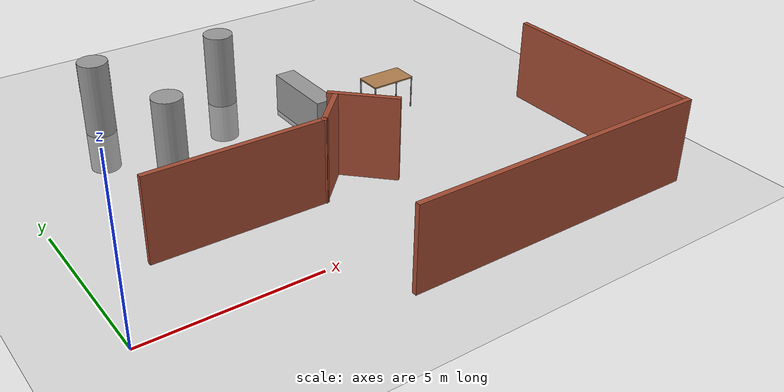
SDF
<sdf version="1.6">
 <world name="default">
  <light name="sun" type="directional">
   <pose>0 0 10 0 -0 0</pose>
   <diffuse>0.8 0.8 0.8 1</diffuse>
   <specular>0.1 0.1 0.1 1</specular>
   <attenuation>
    <range>1000</range>
    <constant>0.9</constant>
    <linear>0.01</linear>
    <quadratic>0.001</quadratic>
   </attenuation>
   <direction>-0.5 0.5 -1</direction>
  </light>
  <model name="ground_plane">
   <static>1</static>
   <link name="link">
    <collision name="collision">
     <geometry><plane><normal>0 0 1</normal><size>100 100</size></plane></geometry>
     <surface><friction><ode><mu>100</mu><mu2>50</mu2></ode></friction></surface>
    </collision>
    <visual name="visual">
     <cast_shadows>0</cast_shadows>
     <geometry><plane><normal>0 0 1</normal><size>100 100</size></plane></geometry>
     <material>
      <script><uri>file://media/materials/scripts/gazebo.material</uri><name>Gazebo/Grey</name></script>
     </material>
    </visual>
   </link>
  </model>
  <gravity>0 0 -9.8</gravity>
  <magnetic_field>6e-06 2.3e-05 -4.2e-05</magnetic_field>
  <atmosphere type="adiabatic"/>
  <physics name="default_physics" default="0" type="ode">
   <max_step_size>0.001</max_step_size>
   <real_time_factor>1</real_time_factor>
   <real_time_update_rate>1000</real_time_update_rate>
  </physics>
  <scene><ambient>0.4 0.4 0.4 1</ambient><background>0.7 0.7 0.7 1</background><shadows>1</shadows></scene>
  <spherical_coordinates>
   <surface_model>EARTH_WGS84</surface_model>
   <latitude_deg>0</latitude_deg>
   <longitude_deg>0</longitude_deg>
   <elevation>0</elevation>
   <heading_deg>0</heading_deg>
  </spherical_coordinates>
  <model name="map.world">
   <pose>8.42472 1.17172 0 0 -0 0</pose>
   <link name="Wall_0">
    <collision name="Wall_0_Collision">
     <geometry><box><size>5.10996 0.15 2.5</size></box></geometry>
     <pose>0 0 1.25 0 -0 0</pose>
    </collision>
    <visual name="Wall_0_Visual">
     <pose>0 0 1.25 0 -0 0</pose>
     <geometry><box><size>5.10996 0.15 2.5</size></box></geometry>
     <material>
      <script><uri>file://media/materials/scripts/gazebo.material</uri><name>Gazebo/Bricks</name></script>
      <ambient>1 1 1 1</ambient>
     </material>
    </visual>
    <pose>-4.23501 1.42128 0 0 0 -0.01492</pose>
   </link>
   <link name="Wall_2">
    <collision name="Wall_2_Collision">
     <geometry><box><size>1.5 0.15 2.5</size></box></geometry>
     <pose>0 0 1.25 0 -0 0</pose>
    </collision>
    <visual name="Wall_2_Visual">
     <pose>0 0 1.25 0 -0 0</pose>
     <geometry><box><size>1.5 0.15 2.5</size></box></geometry>
     <material>
      <script><uri>file://media/materials/scripts/gazebo.material</uri><name>Gazebo/Bricks</name></script>
      <ambient>1 1 1 1</ambient>
     </material>
    </visual>
    <pose>-1.27801 1.86157 0 0 0 -2.35619</pose>
   </link>
   <link name="Wall_4">
    <collision name="Wall_4_Collision">
     <geometry><box><size>2 0.15 2.5</size></box></geometry>
     <pose>0 0 1.25 0 -0 0</pose>
    </collision>
    <visual name="Wall_4_Visual">
     <pose>0 0 1.25 0 -0 0</pose>
     <geometry><box><size>2 0.15 2.5</size></box></geometry>
     <material>
      <script><uri>file://media/materials/scripts/gazebo.material</uri><name>Gazebo/Bricks</name></script>
      <ambient>1 1 1 1</ambient>
     </material>
    </visual>
    <pose>-0.160617 1.91735 0 0 0 -0.785398</pose>
   </link>
   <link name="Wall_6">
    <collision name="Wall_6_Collision">
     <geometry><box><size>9 0.15 2.5</size></box></geometry>
     <pose>0 0 1.25 0 -0 0</pose>
    </collision>
    <visual name="Wall_6_Visual">
     <pose>0 0 1.25 0 -0 0</pose>
     <geometry><box><size>9 0.15 2.5</size></box></geometry>
     <material>
      <script><uri>file://media/materials/scripts/gazebo.material</uri><name>Gazebo/Bricks</name></script>
      <ambient>1 1 1 1</ambient>
     </material>
    </visual>
    <pose>2.29082 -3.07814 0 0 -0 3.14159</pose>
   </link>
   <link name="Wall_9">
    <collision name="Wall_9_Collision">
     <geometry><box><size>6.25 0.15 2.5</size></box></geometry>
     <pose>0 0 1.25 0 -0 0</pose>
    </collision>
    <visual name="Wall_9_Visual">
     <pose>0 0 1.25 0 -0 0</pose>
     <geometry><box><size>6.25 0.15 2.5</size></box></geometry>
     <material>
      <script><uri>file://media/materials/scripts/gazebo.material</uri><name>Gazebo/Bricks</name></script>
      <ambient>1 1 1 1</ambient>
     </material>
    </visual>
    <pose>6.71582 0.028142 0 0 0 -1.5708</pose>
   </link>
   <static>1</static>
  </model>
  <model name="table">
   <static>0</static>
   <link name="link">
    <collision name="surface">
     <pose>0 0 1 0 -0 0</pose>
     <geometry><box><size>1.5 0.8 0.03</size></box></geometry>
     <surface><friction><ode><mu>0.6</mu><mu2>0.6</mu2></ode></friction></surface>
    </collision>
    <visual name="visual1">
     <pose>0 0 1 0 -0 0</pose>
     <geometry><box><size>1.4 0.8 0.04</size></box></geometry>
     <material>
      <script><uri>file://media/materials/scripts/gazebo.material</uri><name>Gazebo/Wood</name></script>
     </material>
    </visual>
    <collision name="front_left_leg">
     <pose>0.68 0.38 0.5 0 -0 0</pose>
     <geometry><cylinder><radius>0.02</radius><length>1</length></cylinder></geometry>
    </collision>
    <visual name="front_left_leg">
     <pose>0.68 0.38 0.5 0 -0 0</pose>
     <geometry><cylinder><radius>0.02</radius><length>1</length></cylinder></geometry>
     <material>
      <script><uri>file://media/materials/scripts/gazebo.material</uri><name>Gazebo/Grey</name></script>
     </material>
    </visual>
    <collision name="front_right_leg">
     <pose>0.68 -0.38 0.5 0 -0 0</pose>
     <geometry><cylinder><radius>0.02</radius><length>1</length></cylinder></geometry>
    </collision>
    <visual name="front_right_leg">
     <pose>0.68 -0.38 0.5 0 -0 0</pose>
     <geometry><cylinder><radius>0.02</radius><length>1</length></cylinder></geometry>
     <material>
      <script><uri>file://media/materials/scripts/gazebo.material</uri><name>Gazebo/Grey</name></script>
     </material>
    </visual>
    <collision name="back_right_leg">
     <pose>-0.68 -0.38 0.5 0 -0 0</pose>
     <geometry><cylinder><radius>0.02</radius><length>1</length></cylinder></geometry>
    </collision>
    <visual name="back_right_leg">
     <pose>-0.68 -0.38 0.5 0 -0 0</pose>
     <geometry><cylinder><radius>0.02</radius><length>1</length></cylinder></geometry>
     <material>
      <script><uri>file://media/materials/scripts/gazebo.material</uri><name>Gazebo/Grey</name></script>
     </material>
    </visual>
    <collision name="back_left_leg">
     <pose>-0.68 0.38 0.5 0 -0 0</pose>
     <geometry><cylinder><radius>0.02</radius><length>1</length></cylinder></geometry>
    </collision>
    <visual name="back_left_leg">
     <pose>-0.68 0.38 0.5 0 -0 0</pose>
     <geometry><cylinder><radius>0.02</radius><length>1</length></cylinder></geometry>
     <material>
      <script><uri>file://media/materials/scripts/gazebo.material</uri><name>Gazebo/Grey</name></script>
     </material>
    </visual>
    <inertial>
     <inertia><ixx>1</ixx><ixy>0</ixy><ixz>0</ixz><iyy>1</iyy><iyz>0</iyz><izz>1</izz></inertia>
     <mass>1</mass>
    </inertial>
   </link>
   <pose>11.1822 6.06203 -9e-06 0 -1e-06 0</pose>
  </model>
  <model name="unit_box_0_0">
   <link name="link">
    <inertial>
     <mass>1.98174</mass>
     <inertia>
      <ixx>1.20281</ixx>
      <ixy>0</ixy>
      <ixz>0</ixz>
      <iyy>0.370272</iyy>
      <iyz>0</iyz>
      <izz>0.961514</izz>
     </inertia>
    </inertial>
    <visual name="visual">
     <geometry><box><size>0.62489 2.3306 1.36074</size></box></geometry>
     <material>
      <script><name>Gazebo/Grey</name><uri>file://media/materials/scripts/gazebo.material</uri></script>
      <ambient>0.3 0.3 0.3 1</ambient>
      <diffuse>0.7 0.7 0.7 1</diffuse>
      <specular>0.01 0.01 0.01 1</specular>
      <emissive>0 0 0 1</emissive>
     </material>
    </visual>
    <collision name="collision">
     <geometry><box><size>0.62489 2.3306 1.36074</size></box></geometry>
     <surface>
      <friction>
       <ode><mu>1</mu><mu2>1</mu2><fdir1>0 0 0</fdir1><slip1>0</slip1><slip2>0</slip2></ode>
       <torsional>
        <coefficient>1</coefficient>
        <patch_radius>0</patch_radius>
        <surface_radius>0</surface_radius>
        <use_patch_radius>1</use_patch_radius>
        <ode><slip>0</slip></ode>
       </torsional>
      </friction>
      <bounce><restitution_coefficient>0</restitution_coefficient><threshold>1e+06</threshold></bounce>
      <contact>
       <collide_without_contact>0</collide_without_contact>
       <collide_without_contact_bitmask>1</collide_without_contact_bitmask>
       <collide_bitmask>1</collide_bitmask>
       <ode>
        <soft_cfm>0</soft_cfm>
        <soft_erp>0.2</soft_erp>
        <kp>1e+13</kp>
        <kd>1</kd>
        <max_vel>0.01</max_vel>
        <min_depth>0</min_depth>
       </ode>
       <bullet>
        <split_impulse>1</split_impulse>
        <split_impulse_penetration_threshold>-0.01</split_impulse_penetration_threshold>
        <soft_cfm>0</soft_cfm>
        <soft_erp>0.2</soft_erp>
        <kp>1e+13</kp>
        <kd>1</kd>
       </bullet>
      </contact>
     </surface>
    </collision>
   </link>
   <static>0</static>
   <pose>8.62397 6.66613 0.5 0 -0 0</pose>
  </model>
  <model name="unit_cylinder_0">
   <pose>4.09309 6.39793 0.5 0 -0 0</pose>
   <link name="link">
    <inertial>
     <mass>1</mass>
     <inertia><ixx>0.145833</ixx><ixy>0</ixy><ixz>0</ixz><iyy>0.145833</iyy><iyz>0</iyz><izz>0.125</izz></inertia>
    </inertial>
    <collision name="collision">
     <geometry><cylinder><radius>0.44841</radius><length>3.51602</length></cylinder></geometry>
    </collision>
    <visual name="visual">
     <geometry><cylinder><radius>0.44841</radius><length>3.51602</length></cylinder></geometry>
     <material>
      <script><name>Gazebo/Grey</name><uri>file://media/materials/scripts/gazebo.material</uri></script>
     </material>
    </visual>
   </link>
  </model>
  <model name="unit_cylinder_0_clone">
   <pose>3.28001 9.64406 0.5 0 -0 0</pose>
   <link name="link">
    <inertial>
     <mass>1</mass>
     <inertia><ixx>0.145833</ixx><ixy>0</ixy><ixz>0</ixz><iyy>0.145833</iyy><iyz>0</iyz><izz>0.125</izz></inertia>
    </inertial>
    <collision name="collision">
     <geometry><cylinder><radius>0.44841</radius><length>3.51602</length></cylinder></geometry>
    </collision>
    <visual name="visual">
     <geometry><cylinder><radius>0.44841</radius><length>3.51602</length></cylinder></geometry>
     <material>
      <script><name>Gazebo/Grey</name><uri>file://media/materials/scripts/gazebo.material</uri></script>
     </material>
    </visual>
   </link>
  </model>
  <model name="unit_cylinder_0_clone_clone">
   <pose>7.19696 9.36098 0.5 0 -0 0</pose>
   <link name="link">
    <inertial>
     <mass>1</mass>
     <inertia><ixx>0.145833</ixx><ixy>0</ixy><ixz>0</ixz><iyy>0.145833</iyy><iyz>0</iyz><izz>0.125</izz></inertia>
    </inertial>
    <collision name="collision">
     <geometry><cylinder><radius>0.44841</radius><length>3.51602</length></cylinder></geometry>
    </collision>
    <visual name="visual">
     <geometry><cylinder><radius>0.44841</radius><length>3.51602</length></cylinder></geometry>
     <material>
      <script><name>Gazebo/Grey</name><uri>file://media/materials/scripts/gazebo.material</uri></script>
     </material>
    </visual>
   </link>
  </model>
  <model name="unit_cylinder_1">
   <pose>4.15976 12.2695 0.5 0 -0 0</pose>
   <link name="link">
    <inertial>
     <mass>1</mass>
     <inertia><ixx>0.145833</ixx><ixy>0</ixy><ixz>0</ixz><iyy>0.145833</iyy><iyz>0</iyz><izz>0.125</izz></inertia>
    </inertial>
    <collision name="collision">
     <geometry><cylinder><radius>0.5</radius><length>1</length></cylinder></geometry>
    </collision>
    <visual name="visual">
     <geometry><cylinder><radius>0.5</radius><length>1</length></cylinder></geometry>
     <material>
      <script><name>Gazebo/Grey</name><uri>file://media/materials/scripts/gazebo.material</uri></script>
     </material>
    </visual>
   </link>
  </model>
 </world>
</sdf>
